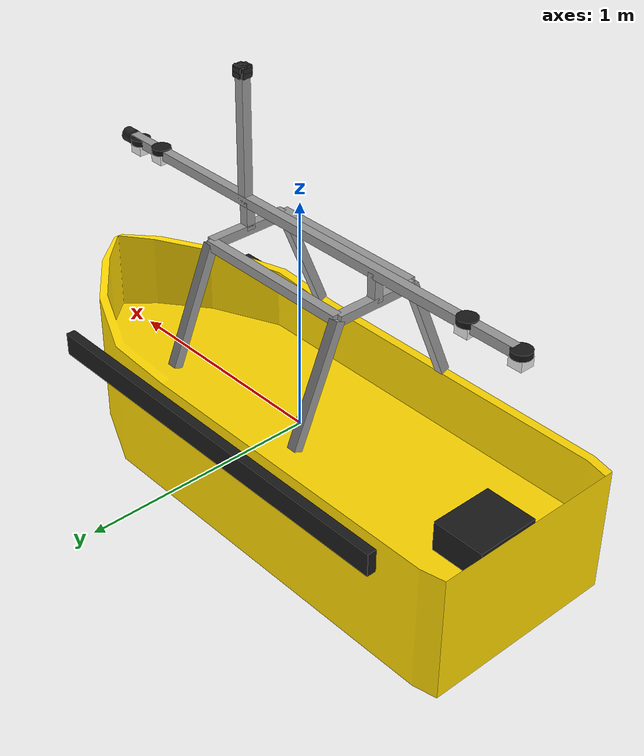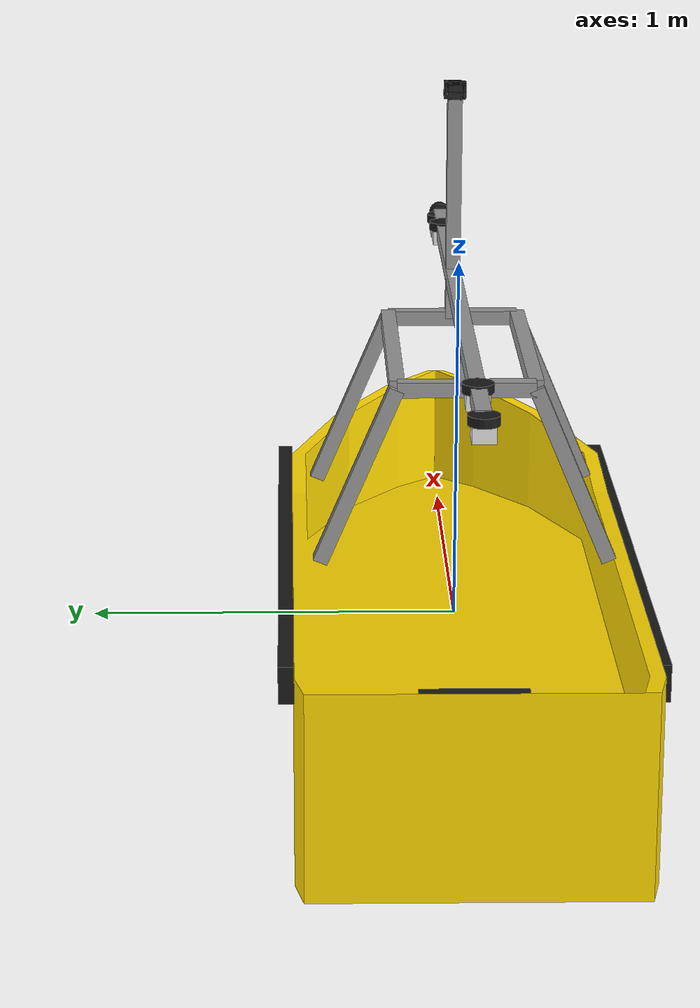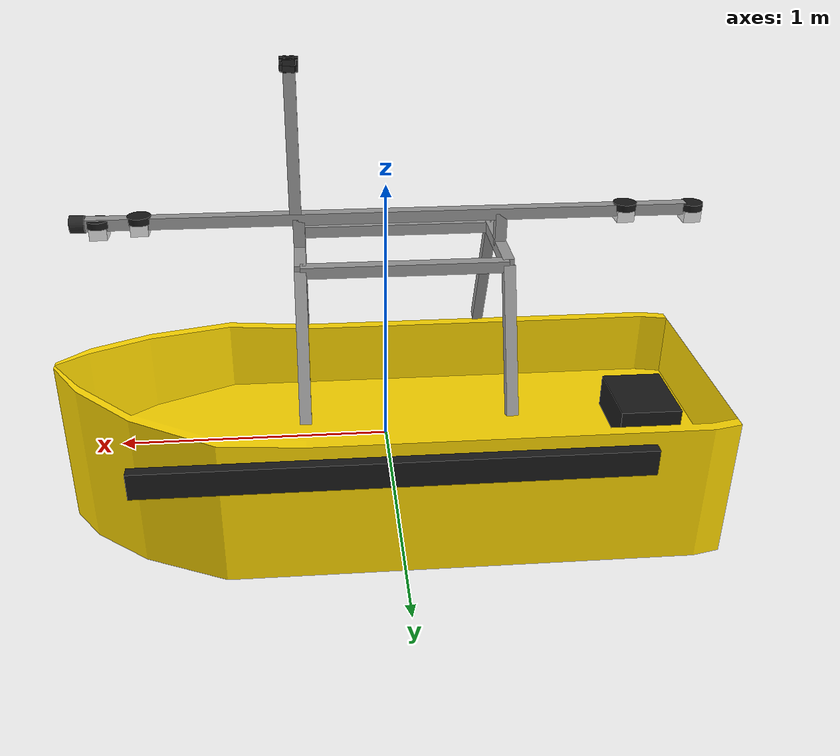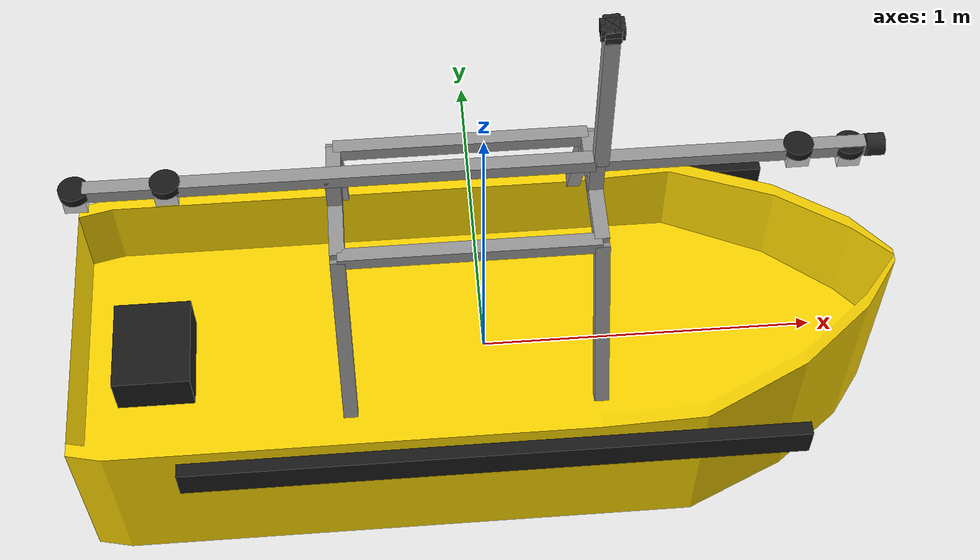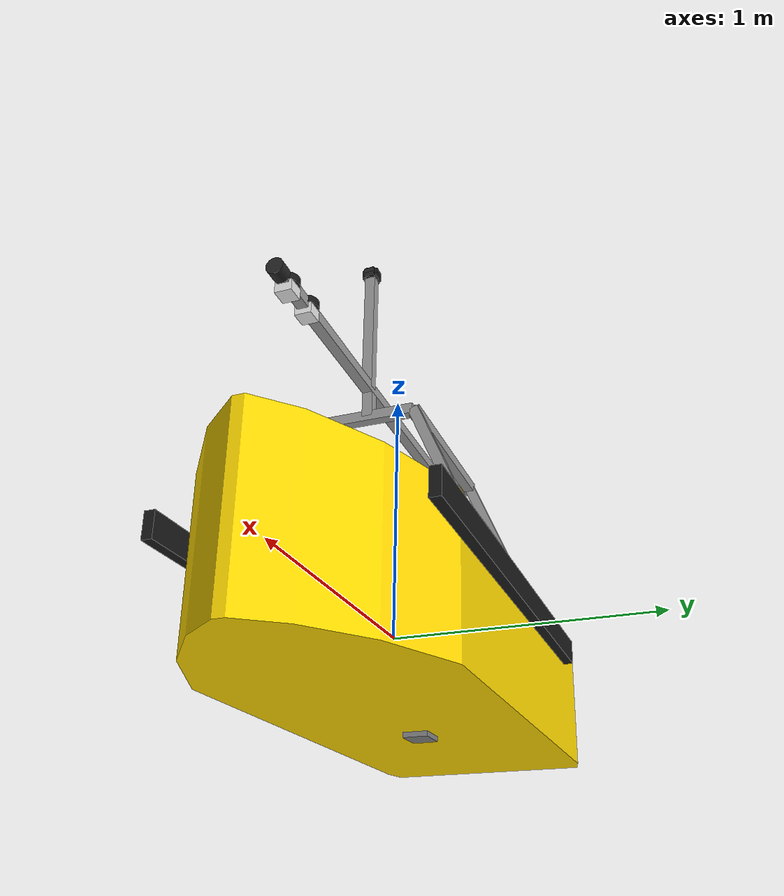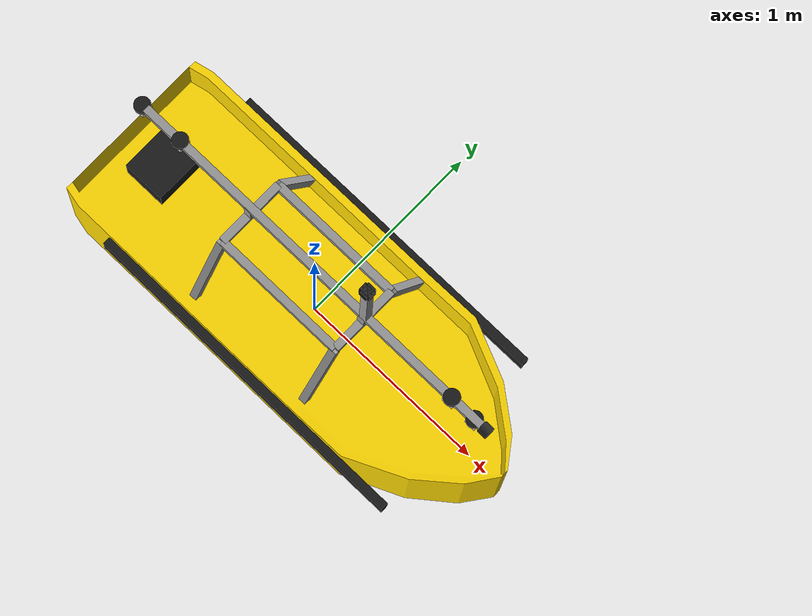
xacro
<?xml version="1.0"?>
<robot name="bizzyboat" xmlns:xacro="http://www.ros.org/wiki/xacro">

  <!-- Materials -->
  <xacro:include filename="$(find bizzyboat_project11)/urdf/materials.xacro"/>

  <!-- Sensor macros -->
  <xacro:include filename="$(find bizzyboat_project11)/urdf/sensors/camera_oak.xacro"/>
  <xacro:include filename="$(find bizzyboat_project11)/urdf/sensors/gnss.xacro"/>
  <xacro:include filename="$(find bizzyboat_project11)/urdf/sensors/sonar.xacro"/>
  <xacro:include filename="$(find bizzyboat_project11)/urdf/sensors/sidescan.xacro"/>

  <!-- ========== Hull ========== -->
  <!-- base_link origin: center screw hole in hull floor, near CofG.
       Marked with L-shaped sticker showing X/Y axes.
       x = forward (bow), y = port, z = up. -->

  <link name="bizzy/base_link">
    <!-- Hull mesh (generated by scripts/generate_hull_mesh.py) -->
    <visual name="hull">
      <geometry>
        <mesh filename="package://bizzyboat_project11/meshes/hull.stl"/>
      </geometry>
      <origin xyz="0 0 0"/>
      <material name="hull_yellow"/>
    </visual>

    <!-- Rubber bumper/fender around hull sides -->
    <visual name="bumper_port">
      <geometry>
        <box size="1.80 0.04 0.10"/>
      </geometry>
      <origin xyz="0.0 0.47 0.15"/>
      <material name="bumper_black"/>
    </visual>
    <visual name="bumper_starboard">
      <geometry>
        <box size="1.80 0.04 0.10"/>
      </geometry>
      <origin xyz="0.0 -0.47 0.15"/>
      <material name="bumper_black"/>
    </visual>

    <!-- Four slanted uprights (hull gunwale to crossbar height).
         Lean inward: bottom at y≈±0.38, top at y≈±0.18. -->
    <visual name="mast_fwd_port">
      <geometry><box size="0.04 0.04 0.51"/></geometry>
      <origin xyz="0.30 0.28 0.535" rpy="0.40 0 0"/>
      <material name="metal_gray"/>
    </visual>
    <visual name="mast_fwd_stbd">
      <geometry><box size="0.04 0.04 0.51"/></geometry>
      <origin xyz="0.30 -0.28 0.535" rpy="-0.40 0 0"/>
      <material name="metal_gray"/>
    </visual>
    <visual name="mast_aft_port">
      <geometry><box size="0.04 0.04 0.51"/></geometry>
      <origin xyz="-0.40 0.28 0.535" rpy="0.40 0 0"/>
      <material name="metal_gray"/>
    </visual>
    <visual name="mast_aft_stbd">
      <geometry><box size="0.04 0.04 0.51"/></geometry>
      <origin xyz="-0.40 -0.28 0.535" rpy="-0.40 0 0"/>
      <material name="metal_gray"/>
    </visual>

    <!-- Lateral crossbars (port-to-starboard at top of uprights) -->
    <visual name="crossbar_fwd">
      <geometry><box size="0.04 0.36 0.04"/></geometry>
      <origin xyz="0.30 0.0 0.77"/>
      <material name="metal_gray"/>
    </visual>
    <visual name="crossbar_aft">
      <geometry><box size="0.04 0.36 0.04"/></geometry>
      <origin xyz="-0.40 0.0 0.77"/>
      <material name="metal_gray"/>
    </visual>

    <!-- Fore-aft side rails (connecting forward and aft bents) -->
    <visual name="rail_port">
      <geometry><box size="0.70 0.04 0.04"/></geometry>
      <origin xyz="-0.05 0.18 0.77"/>
      <material name="metal_gray"/>
    </visual>
    <visual name="rail_stbd">
      <geometry><box size="0.70 0.04 0.04"/></geometry>
      <origin xyz="-0.05 -0.18 0.77"/>
      <material name="metal_gray"/>
    </visual>

    <!-- Risers from crossbars to center rail height -->
    <visual name="riser_fwd">
      <geometry><box size="0.04 0.04 0.12"/></geometry>
      <origin xyz="0.30 0.0 0.83"/>
      <material name="metal_gray"/>
    </visual>
    <visual name="riser_aft">
      <geometry><box size="0.04 0.04 0.12"/></geometry>
      <origin xyz="-0.40 0.0 0.83"/>
      <material name="metal_gray"/>
    </visual>

    <visual name="center_rail">
      <geometry><box size="2.10 0.04 0.04"/></geometry>
      <origin xyz="0.0 0.0 0.89"/>
      <material name="metal_gray"/>
    </visual>

    <!-- Factory WiFi tower, extended for 4x OAK camera bracket.
         Single vertical tube on centerline, rising from center rail
         to camera bracket height. -->
    <visual name="camera_tower">
      <geometry><box size="0.04 0.04 0.52"/></geometry>
      <origin xyz="0.31 0.0 1.15"/>
      <material name="metal_gray"/>
    </visual>
  </link>

  <!-- ========== Reference frames ========== -->
  <link name="bizzy/waterline"/>
  <joint name="base_to_waterline" type="fixed">
    <parent link="bizzy/base_link"/>
    <child link="bizzy/waterline"/>
    <origin xyz="0 0 0.030" rpy="0 0 0"/>
  </joint>

  <!-- ========== Cameras (4x OAK-1 PoE) ========== -->
  <!-- Mounted at top of mast on 3D-printed bracket, 90deg apart.
       All tilted ~5deg downward (pitch = +0.09 rad in URDF convention).
       Positions are estimated [EST] — refine with measurements. -->

  <xacro:property name="camera_x" value="0.31"/>
  <xacro:property name="camera_z" value="1.41"/>
  <xacro:property name="camera_tilt" value="0.09"/>

  <xacro:property name="camera_mast_pitch" value="${-1.963 * pi / 180.0}"/>
  <xacro:property name="camera_mast_roll" value="${0.947 * pi / 180.0}"/>
  <!-- Per-camera trims (deg), same calibration:      pitch    roll -->
  <xacro:property name="camera_trim_forward_pitch"  value="${ 0.107 * pi / 180.0}"/>
  <xacro:property name="camera_trim_forward_roll"   value="${-0.572 * pi / 180.0}"/>
  <xacro:property name="camera_trim_aft_pitch"  value="${ 0.467 * pi / 180.0}"/>
  <xacro:property name="camera_trim_aft_roll"   value="${-0.777 * pi / 180.0}"/>
  <xacro:property name="camera_trim_port_pitch" value="${-0.157 * pi / 180.0}"/>
  <xacro:property name="camera_trim_port_roll"  value="${-0.031 * pi / 180.0}"/>
  <xacro:property name="camera_trim_starboard_pitch" value="${-0.348 * pi / 180.0}"/>
  <xacro:property name="camera_trim_starboard_roll"  value="${-0.385 * pi / 180.0}"/>

  <link name="bizzy/camera_mast"/>
  <joint name="base_to_camera_mast" type="fixed">
    <parent link="bizzy/base_link"/>
    <child link="bizzy/camera_mast"/>
    <origin xyz="${camera_x} 0 ${camera_z}" rpy="${camera_mast_roll} ${camera_mast_pitch} 0"/>
  </joint>

  <xacro:oak_camera parent="bizzy/camera_mast" name="oak_forward"
    x="0" y="0" z="0"
    roll="${camera_trim_forward_roll}" pitch="${camera_tilt + camera_trim_forward_pitch}" yaw="0"/>

  <xacro:oak_camera parent="bizzy/camera_mast" name="oak_port"
    x="0" y="0" z="0"
    roll="${camera_trim_port_roll}" pitch="${camera_tilt + camera_trim_port_pitch}" yaw="${pi/2}"/>

  <xacro:oak_camera parent="bizzy/camera_mast" name="oak_starboard"
    x="0" y="0" z="0"
    roll="${camera_trim_starboard_roll}" pitch="${camera_tilt + camera_trim_starboard_pitch}" yaw="${-pi/2}"/>

  <xacro:oak_camera parent="bizzy/camera_mast" name="oak_aft"
    x="0" y="0" z="0"
    roll="${camera_trim_aft_roll}" pitch="${camera_tilt + camera_trim_aft_pitch}" yaw="${pi}"/>

  <!-- ========== FCU GNSS Antennas (2x CUAV C-RTK 2HP) ========== -->

  <xacro:gnss_antenna parent="bizzy/base_link" name="gnss_forward"
    x="0.835" y="0.0" z="0.89"/>

  <xacro:gnss_antenna parent="bizzy/base_link" name="gnss_aft"
    x="-0.835" y="0.0" z="0.89"/>

  <!-- ========== SBG Ellipse-D GNSS Antennas (dual-antenna INS) ========== -->

  <xacro:gnss_antenna parent="bizzy/base_link" name="sbg_gnss_primary"
    x="-1.073" y="0.0" z="0.8825"/>

  <xacro:gnss_antenna parent="bizzy/base_link" name="sbg_gnss_secondary"
    x="0.973" y="0.0" z="0.88"/>

  <!-- ========== Factory USB Camera ========== -->
  <!-- On the center rail, forward of the bow GNSS antenna. -->

  <link name="bizzy/usb_camera">
    <visual>
      <geometry>
        <cylinder length="0.05" radius="0.03"/>
      </geometry>
      <origin rpy="0 ${pi/2} 0" xyz="-0.01 0 0"/>
      <material name="camera_dark"/>
    </visual>
  </link>

  <joint name="base_to_usb_camera" type="fixed">
    <parent link="bizzy/base_link"/>
    <child link="bizzy/usb_camera"/>
    <origin xyz="1.05 0.0 0.89" rpy="0 0 0"/>
  </joint>

  <link name="bizzy/usb_camera_optical"/>

  <joint name="usb_camera_to_usb_camera_optical" type="fixed">
    <parent link="bizzy/usb_camera"/>
    <child link="bizzy/usb_camera_optical"/>
    <origin xyz="0 0 0" rpy="${-pi/2} 0 ${-pi/2}"/>
  </joint>

  <!-- ========== AutoNav Box (contains Cube Orange FCU + IMU) ========== -->

  <link name="bizzy/autonav_box">
    <visual>
      <geometry>
        <box size="0.23 0.28 0.14"/>
      </geometry>
      <origin xyz="-0.115 0 0.07"/>
      <material name="bumper_black"/>
    </visual>
  </link>

  <joint name="base_to_autonav_box" type="fixed">
    <parent link="bizzy/base_link"/>
    <child link="bizzy/autonav_box"/>
    <origin xyz="-0.875 0.0 -0.01" rpy="0 0 0"/>
  </joint>

  <link name="bizzy/imu"/>

  <joint name="autonav_box_to_imu" type="fixed">
    <parent link="bizzy/autonav_box"/>
    <child link="bizzy/imu"/>
    <origin xyz="-0.115 0.0 0.06" rpy="0 0 0"/>
  </joint>

  <!-- ========== Imagenex DeltaT Sonar ========== -->
  <!-- Below hull, approximate position from manual diagram.
       Exact mount position TBD. -->

  <xacro:deltat_sonar parent="bizzy/base_link" name="deltat"
    x="-0.23" y="0.0" z="-0.18"/>

  <!-- ========== Kongsberg M3 Multibeam ========== -->
  <xacro:m3_multibeam parent="bizzy/base_link" name="m3"
    x="-0.29" y="0.0" z="-0.28"/>

  <!-- ========== Garmin GCV-20 Sidescan ========== -->
  <xacro:garmin_sidescan parent="bizzy/base_link" name="garmin_sidescan"
    x="-0.003" y="0.0" z="-0.29"/>

</robot>

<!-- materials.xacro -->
<robot xmlns:xacro="http://www.ros.org/wiki/xacro">

  <material name="hull_yellow">
    <color rgba="1.0 0.85 0.0 1.0"/>
  </material>

  <material name="metal_gray">
    <color rgba="0.6 0.6 0.6 1.0"/>
  </material>

  <material name="camera_dark">
    <color rgba="0.15 0.15 0.15 1.0"/>
  </material>

  <material name="gnss_black">
    <color rgba="0.1 0.1 0.1 1.0"/>
  </material>

  <material name="gnss_bracket_white">
    <color rgba="0.9 0.9 0.9 1.0"/>
  </material>

  <material name="sonar_gray">
    <color rgba="0.5 0.5 0.5 1.0"/>
  </material>

  <material name="bumper_black">
    <color rgba="0.1 0.1 0.1 1.0"/>
  </material>

  <material name="image_plane">
    <color rgba="0.0 0.5 0.0 0.5"/>
  </material>

</robot>

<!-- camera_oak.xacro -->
<robot xmlns:xacro="http://www.ros.org/wiki/xacro">

  <!-- OAK-1 PoE camera macro.
       Creates a camera link and an optical frame child.
       Optical frame follows ROS convention: x-right, y-down, z-forward. -->
  <xacro:macro name="oak_camera" params="parent name x y z roll:=0 pitch:=0 yaw:=0">

    <link name="bizzy/${name}">
      <visual>
        <geometry>
          <box size="0.04 0.06 0.04"/>
        </geometry>
        <origin xyz="0 0 0"/>
        <material name="camera_dark"/>
      </visual>
    </link>

    <joint name="base_to_${name}" type="fixed">
      <parent link="${parent}"/>
      <child link="bizzy/${name}"/>
      <origin xyz="${x} ${y} ${z}" rpy="${roll} ${pitch} ${yaw}"/>
    </joint>

    <link name="bizzy/${name}_optical"/>

    <joint name="${name}_to_${name}_optical" type="fixed">
      <parent link="bizzy/${name}"/>
      <child link="bizzy/${name}_optical"/>
      <origin xyz="0 0 0" rpy="${-pi/2} 0 ${-pi/2}"/>
    </joint>

  </xacro:macro>

</robot>

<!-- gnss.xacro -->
<robot xmlns:xacro="http://www.ros.org/wiki/xacro">

  <!-- GNSS antenna puck macro (CUAV C-RTK 2HP style).
       Visual: white bracket with black puck on top. -->
  <xacro:macro name="gnss_antenna" params="parent name x y z">

    <link name="bizzy/${name}">
      <!-- Mounting bracket -->
      <visual name="bracket">
        <geometry>
          <box size="0.06 0.06 0.04"/>
        </geometry>
        <origin xyz="0 0 -0.02"/>
        <material name="gnss_bracket_white"/>
      </visual>
      <!-- Antenna puck -->
      <visual name="puck">
        <geometry>
          <cylinder radius="0.04" length="0.025"/>
        </geometry>
        <origin xyz="0 0 0.0125"/>
        <material name="gnss_black"/>
      </visual>
    </link>

    <joint name="base_to_${name}" type="fixed">
      <parent link="${parent}"/>
      <child link="bizzy/${name}"/>
      <origin xyz="${x} ${y} ${z}" rpy="0 0 0"/>
    </joint>

  </xacro:macro>

</robot>

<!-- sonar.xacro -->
<robot xmlns:xacro="http://www.ros.org/wiki/xacro">

  <!-- Imagenex DeltaT multibeam sonar macro.
       Mounted below the hull, flipped (roll=pi, yaw=pi) so the
       beam points downward. -->
  <xacro:macro name="deltat_sonar" params="parent name x y z roll:=3.14159 yaw:=3.14159">

    <link name="bizzy/${name}">
      <visual>
        <geometry>
          <box size="0.12 0.10 0.08"/>
        </geometry>
        <origin xyz="0 0 0"/>
        <material name="sonar_gray"/>
      </visual>
    </link>

    <joint name="base_to_${name}" type="fixed">
      <parent link="${parent}"/>
      <child link="bizzy/${name}"/>
      <origin xyz="${x} ${y} ${z}" rpy="${roll} 0 ${yaw}"/>
    </joint>

  </xacro:macro>

  <xacro:macro name="m3_multibeam" params="parent name x y z roll:=3.14159 yaw:=0">

    <link name="bizzy/${name}">
      <visual>
        <geometry>
          <box size="0.12 0.10 0.08"/>
        </geometry>
        <origin xyz="0 0 0"/>
        <material name="sonar_gray"/>
      </visual>
    </link>

    <joint name="base_to_${name}" type="fixed">
      <parent link="${parent}"/>
      <child link="bizzy/${name}"/>
      <origin xyz="${x} ${y} ${z}" rpy="${roll} 0 ${yaw}"/>
    </joint>

  </xacro:macro>

</robot>

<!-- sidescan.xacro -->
<robot xmlns:xacro="http://www.ros.org/wiki/xacro">

  <xacro:macro name="garmin_sidescan" params="parent name x:=0 y:=0 z:=0 grazing_deg:=35.0">

    <!-- Mount frame, aligned with base_link (X fwd, Y port, Z up). -->
    <link name="bizzy/${name}"/>

    <joint name="base_to_${name}" type="fixed">
      <parent link="${parent}"/>
      <child link="bizzy/${name}"/>
      <origin xyz="${x} ${y} ${z}" rpy="0 0 0"/>
    </joint>

    <!-- Down-look (water-column) beam: +Z down. -->
    <link name="bizzy/${name}_down"/>
    <joint name="${name}_to_${name}_down" type="fixed">
      <parent link="bizzy/${name}"/>
      <child link="bizzy/${name}_down"/>
      <origin xyz="0 0 0" rpy="${pi} 0 0"/>
    </joint>

    <link name="bizzy/${name}_port"/>
    <joint name="${name}_to_${name}_port" type="fixed">
      <parent link="bizzy/${name}"/>
      <child link="bizzy/${name}_port"/>
      <origin xyz="0 0 0" rpy="${-pi/2 - grazing_deg * pi / 180} 0 0"/>
    </joint>

    <link name="bizzy/${name}_starboard"/>
    <joint name="${name}_to_${name}_starboard" type="fixed">
      <parent link="bizzy/${name}"/>
      <child link="bizzy/${name}_starboard"/>
      <origin xyz="0 0 0" rpy="${pi/2 + grazing_deg * pi / 180} 0 0"/>
    </joint>

  </xacro:macro>
</robot>
